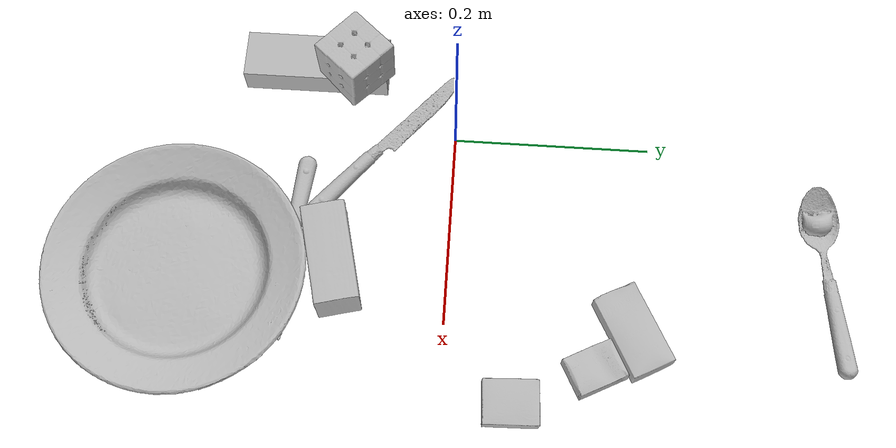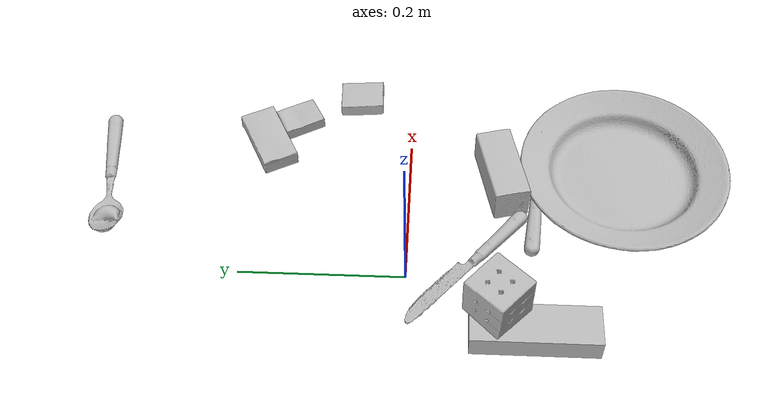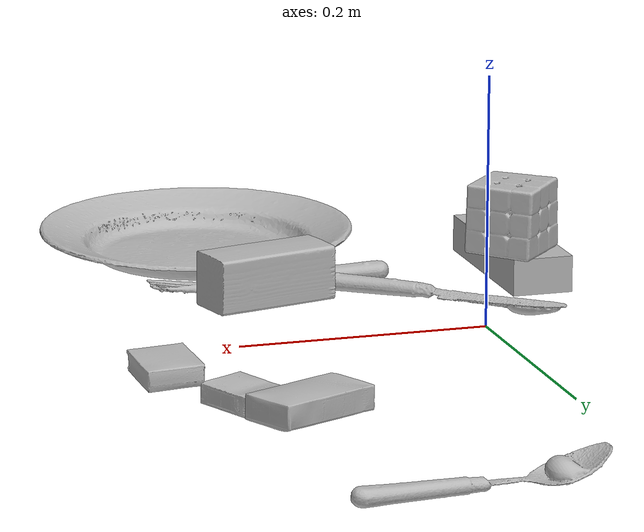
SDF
<sdf version="1.4">
  <world name="default">
    <light name="light1" type="point">
      <pose>0 0 1 0 0 0</pose>
      <diffuse>3 3 3 1</diffuse>
      <specular>3 3 3 1</specular>
    </light>
    <light name="light2" type="point">
      <pose>0 0.5 2 0 0 0</pose>
      <diffuse>1 1 1 1</diffuse>
      <specular>1 1 1 1</specular>
    </light>
    <light name="light3" type="point">
      <pose>0 0.5 2 0 0 0</pose>
      <diffuse>3 3 3 1</diffuse>
      <specular>3 3 3 1</specular>
    </light>
    <scene>
      <ambient>0.7 0.7 0.7</ambient>
    </scene>
    <model name="box11">
      <link name="link_box11">
        <collision name="default">
          <geometry>
            <mesh>
              <uri>model://pudding_box/collision_meshes/collision.obj</uri>
              <scale>0.5 0.5 0.5</scale>
            </mesh>
          </geometry>
          <surface>
            <friction>
              <ode>
                <mu>0.5</mu>
                <mu2>0.5</mu2>
              </ode>
            </friction>
          <contact>
        <ode>
            <max_vel>0</max_vel>
            <min_depth>0.0001</min_depth>
            <kp>1e8</kp>
        </ode>
    </contact></surface>
        </collision>
        <visual name="default">
          <geometry>
            <mesh>
              <uri>model://pudding_box/visual_meshes/visual.dae</uri>
              <scale>0.5 0.5 0.5</scale>
            </mesh>
          </geometry>
        </visual>
        <inertial>
          <mass>0.05641884729266167</mass>
          <pose>0.00024474109522998333 0.000403394311433658 -0.00025944141088984907 0.005213101771016666 -0.006603799659696515 0.020079828883224148</pose>
          <inertia>
            <ixx>1.5944652e-05</ixx>
            <iyy>1.0727675e-05</iyy>
            <izz>2.3546443e-05</izz>
            <ixy>0</ixy>
            <ixz>0</ixz>
            <iyz>0</iyz>
          </inertia>
        </inertial>
      </link>
      <pose>0.2764330506324768 0.06856215000152588 0.009862902574241161 0.022348406904335302 -0.011391813389975407 -3.0999515583148125</pose>
    </model>
    <model name="box12">
      <link name="link_box12">
        <collision name="default">
          <geometry>
            <mesh>
              <uri>model://wood_block/collision_meshes/collision.obj</uri>
              <scale>0.5 0.5 0.5</scale>
            </mesh>
          </geometry>
          <surface>
            <friction>
              <ode>
                <mu>0.5</mu>
                <mu2>0.5</mu2>
              </ode>
            </friction>
          <contact>
        <ode>
            <max_vel>0</max_vel>
            <min_depth>0.0001</min_depth>
            <kp>1e8</kp>
        </ode>
    </contact></surface>
        </collision>
        <visual name="default">
          <geometry>
            <mesh>
              <uri>model://wood_block/visual_meshes/visual.dae</uri>
              <scale>0.5 0.5 0.5</scale>
            </mesh>
          </geometry>
        </visual>
        <inertial>
          <mass>0.1445801854133606</mass>
          <pose>-2.906657982748584e-06 -0.000285404734313488 0.00013204291462898254 -0.052208162951624955 -0.0051926954609686745 -0.006861377578377277</pose>
          <inertia>
            <ixx>4.836754e-05</ixx>
            <iyy>0.0001527931</iyy>
            <izz>0.00015222155</izz>
            <ixy>0</ixy>
            <ixz>0</ixz>
            <iyz>0</iyz>
          </inertia>
        </inertial>
      </link>
      <pose>0.14547322690486908 -0.11474356055259705 0.022629259154200554 -0.005208447780292873 0.0057187036352896025 -2.9010398795763694</pose>
    </model>
    <model name="box13">
      <link name="link_box13">
        <collision name="default">
          <geometry>
            <mesh>
              <uri>model://sugar_box/collision_meshes/collision.obj</uri>
              <scale>0.5 0.5 0.5</scale>
            </mesh>
          </geometry>
          <surface>
            <friction>
              <ode>
                <mu>0.5</mu>
                <mu2>0.5</mu2>
              </ode>
            </friction>
          <contact>
        <ode>
            <max_vel>0</max_vel>
            <min_depth>0.0001</min_depth>
            <kp>1e8</kp>
        </ode>
    </contact></surface>
        </collision>
        <visual name="default">
          <geometry>
            <mesh>
              <uri>model://sugar_box/visual_meshes/visual.dae</uri>
              <scale>0.5 0.5 0.5</scale>
            </mesh>
          </geometry>
        </visual>
        <inertial>
          <mass>0.1187032163143158</mass>
          <pose>0.0005171863595023751 1.924554817378521e-05 -0.00018182402709499002 -0.0004046259512710581 0.0010506635216588768 0.002615378556274426</pose>
          <inertia>
            <ixx>2.4725794e-05</ixx>
            <iyy>7.991886e-05</iyy>
            <izz>9.567241e-05</izz>
            <ixy>0</ixy>
            <ixz>0</ixz>
            <iyz>0</iyz>
          </inertia>
        </inertial>
      </link>
      <pose>0.198885977268219 0.18416917324066162 0.011399324052035809 0.0007554246523900311 -0.0234293555425356 0.47135132542319375</pose>
    </model>
    <model name="box21">
      <link name="link_box21">
        <collision name="default">
          <geometry>
            <mesh>
              <uri>model://jenga/collision_meshes/collision.obj</uri>
              <scale>1.0 1.0 1.0</scale>
            </mesh>
          </geometry>
          <surface>
            <friction>
              <ode>
                <mu>0.5</mu>
                <mu2>0.5</mu2>
              </ode>
            </friction>
          <contact>
        <ode>
            <max_vel>0</max_vel>
            <min_depth>0.0001</min_depth>
            <kp>1e8</kp>
        </ode>
    </contact></surface>
        </collision>
        <visual name="default">
          <geometry>
            <mesh>
              <uri>model://jenga/visual_meshes/visual.dae</uri>
              <scale>1.0 1.0 1.0</scale>
            </mesh>
          </geometry>
        </visual>
        <inertial>
          <mass>0.20898528397083282</mass>
          <pose>-2.502855807051674e-07 -0.00010250010382151231 -4.092339804628864e-05 0.0 -7.342154049184251e-07 0.0</pose>
          <inertia>
            <ixx>5.7831294e-05</ixx>
            <iyy>0.0003918633</iyy>
            <izz>0.00041834736</izz>
            <ixy>0</ixy>
            <ixz>0</ixz>
            <iyz>0</iyz>
          </inertia>
        </inertial>
      </link>
      <pose>-0.07457876205444336 -0.1500241458415985 0.015000135637819767 -9.459562646749289e-06 -1.3434907061351965e-06 -1.5717644364826433</pose>
    </model>
    <model name="box22">
      <link name="link_box22">
        <collision name="default">
          <geometry>
            <mesh>
              <uri>model://rubiks_cube/collision_meshes/collision.obj</uri>
              <scale>1.0 1.0 1.0</scale>
            </mesh>
          </geometry>
          <surface>
            <friction>
              <ode>
                <mu>0.5</mu>
                <mu2>0.5</mu2>
              </ode>
            </friction>
          <contact>
        <ode>
            <max_vel>0</max_vel>
            <min_depth>0.0001</min_depth>
            <kp>1e8</kp>
        </ode>
    </contact></surface>
        </collision>
        <visual name="default">
          <geometry>
            <mesh>
              <uri>model://rubiks_cube/visual_meshes/visual.dae</uri>
              <scale>1.0 1.0 1.0</scale>
            </mesh>
          </geometry>
        </visual>
        <inertial>
          <mass>0.28698527812957764</mass>
          <pose>2.6721041649580002e-05 5.2569666877388954e-05 -7.2643156272533815e-06 -0.05467256881712973 -0.09813902151902686 -0.034455808755049874</pose>
          <inertia>
            <ixx>0.00015857864</ixx>
            <iyy>0.00015783912</iyy>
            <izz>0.00015989273</izz>
            <ixy>0</ixy>
            <ixz>0</ixz>
            <iyz>0</iyz>
          </inertia>
        </inertial>
      </link>
      <pose>-0.05841410160064697 -0.10597915947437286 0.05867599695920944 -2.554095229411939e-05 -7.142707965917997e-05 -2.313878126415871</pose>
    </model>
    <model name="box23">
      <link name="link_box23">
        <collision name="default">
          <geometry>
            <mesh>
              <uri>model://cracker_box/collision_meshes/collision.obj</uri>
              <scale>0.25 0.25 0.25</scale>
            </mesh>
          </geometry>
          <surface>
            <friction>
              <ode>
                <mu>0.5</mu>
                <mu2>0.5</mu2>
              </ode>
            </friction>
          <contact>
        <ode>
            <max_vel>0</max_vel>
            <min_depth>0.0001</min_depth>
            <kp>1e8</kp>
        </ode>
    </contact></surface>
        </collision>
        <visual name="default">
          <geometry>
            <mesh>
              <uri>model://cracker_box/visual_meshes/visual.dae</uri>
              <scale>0.25 0.25 0.25</scale>
            </mesh>
          </geometry>
        </visual>
        <inertial>
          <mass>0.04468085244297981</mass>
          <pose>0.00023660414444748312 6.358561222441494e-05 -0.0004257383698131889 -0.0003162076226327385 -0.011106488669128663 0.0025467943033026423</pose>
          <inertia>
            <ixx>7.10301e-06</ixx>
            <iyy>1.1728463e-05</iyy>
            <izz>1.6737597e-05</izz>
            <ixy>0</ixy>
            <ixz>0</ixz>
            <iyz>0</iyz>
          </inertia>
        </inertial>
      </link>
      <pose>0.2377578318119049 0.14797908067703247 0.0091205770149827 -0.011790380752834645 -0.007362091552027015 -1.095939346925331</pose>
    </model>
    <model name="plate1">
      <link name="link_plate1">
        <collision name="default">
          <geometry>
            <mesh>
              <uri>model://plate/collision_meshes/collision.obj</uri>
              <scale>1.0 1.0 1.0</scale>
            </mesh>
          </geometry>
          <surface>
            <friction>
              <ode>
                <mu>0.5</mu>
                <mu2>0.5</mu2>
              </ode>
            </friction>
          <contact>
        <ode>
            <max_vel>0</max_vel>
            <min_depth>0.0001</min_depth>
            <kp>1e8</kp>
        </ode>
    </contact></surface>
        </collision>
        <visual name="default">
          <geometry>
            <mesh>
              <uri>model://plate/visual_meshes/visual.dae</uri>
              <scale>1.0 1.0 1.0</scale>
            </mesh>
          </geometry>
        </visual>
        <inertial>
          <mass>0.20184239745140076</mass>
          <pose>-0.0006044648471288383 0.00027825962752103806 -0.0010561983799561858 0.0022188105697194356 -0.003225466439192432 0.4526020757977656</pose>
          <inertia>
            <ixx>0.00094422296</ixx>
            <iyy>0.00093519164</iyy>
            <izz>0.0018467589</izz>
            <ixy>0</ixy>
            <ixz>0</ixz>
            <iyz>0</iyz>
          </inertia>
        </inertial>
      </link>
      <pose>0.16193784773349762 -0.26876100897789 0.013725809752941132 1.1859244984173899e-05 0.0003765910578289073 -3.050491695540779</pose>
    </model>
    <model name="silverware1">
      <link name="link_silverware1">
        <collision name="default">
          <geometry>
            <mesh>
              <uri>model://fork/collision_meshes/collision.obj</uri>
              <scale>1.0 1.0 1.0</scale>
            </mesh>
          </geometry>
          <surface>
            <friction>
              <ode>
                <mu>0.5</mu>
                <mu2>0.5</mu2>
              </ode>
            </friction>
          <contact>
        <ode>
            <max_vel>0</max_vel>
            <min_depth>0.0001</min_depth>
            <kp>1e8</kp>
        </ode>
    </contact></surface>
        </collision>
        <visual name="default">
          <geometry>
            <mesh>
              <uri>model://fork/visual_meshes/visual.dae</uri>
              <scale>1.0 1.0 1.0</scale>
            </mesh>
          </geometry>
        </visual>
        <inertial>
          <mass>0.03151825815439224</mass>
          <pose>-0.029570046812295914 0.00046588233090005815 0.0003218861820641905 -0.013550990610422763 -0.010977834578584837 0.014453900606944525</pose>
          <inertia>
            <ixx>1.1048933e-06</ixx>
            <iyy>8.2285114e-05</iyy>
            <izz>8.2779305e-05</izz>
            <ixy>0</ixy>
            <ixz>0</ixz>
            <iyz>0</iyz>
          </inertia>
        </inertial>
      </link>
      <pose>0.12988507747650146 -0.159467414021492 0.005361598916351795 0.007281715613867393 0.04626214381962081 -0.10362141777341283</pose>
    </model>
    <model name="silverware2">
      <link name="link_silverware2">
        <collision name="default">
          <geometry>
            <mesh>
              <uri>model://spoon/collision_meshes/collision.obj</uri>
              <scale>1.0 1.0 1.0</scale>
            </mesh>
          </geometry>
          <surface>
            <friction>
              <ode>
                <mu>0.5</mu>
                <mu2>0.5</mu2>
              </ode>
            </friction>
          <contact>
        <ode>
            <max_vel>0</max_vel>
            <min_depth>0.0001</min_depth>
            <kp>1e8</kp>
        </ode>
    </contact></surface>
        </collision>
        <visual name="default">
          <geometry>
            <mesh>
              <uri>model://spoon/visual_meshes/visual.dae</uri>
              <scale>1.0 1.0 1.0</scale>
            </mesh>
          </geometry>
        </visual>
        <inertial>
          <mass>0.04083608463406563</mass>
          <pose>-0.005526324734091759 -0.001603417913429439 -0.0007271658978424966 0.03521537575369321 -0.03906582415196765 0.006150608891198343</pose>
          <inertia>
            <ixx>2.2713682e-06</ixx>
            <iyy>0.0001553799</iyy>
            <izz>0.0001565001</izz>
            <ixy>0</ixy>
            <ixz>0</ixz>
            <iyz>0</iyz>
          </inertia>
        </inertial>
      </link>
      <pose>0.13467589020729065 0.377465158700943 0.008385265246033669 0.006728893535052385 0.026892962185722236 -3.0184955930152544</pose>
    </model>
    <model name="silverware3">
      <link name="link_silverware3">
        <collision name="default">
          <geometry>
            <mesh>
              <uri>model://knife/collision_meshes/collision.obj</uri>
              <scale>1.0 1.0 1.0</scale>
            </mesh>
          </geometry>
          <surface>
            <friction>
              <ode>
                <mu>0.5</mu>
                <mu2>0.5</mu2>
              </ode>
            </friction>
          <contact>
        <ode>
            <max_vel>0</max_vel>
            <min_depth>0.0001</min_depth>
            <kp>1e8</kp>
        </ode>
    </contact></surface>
        </collision>
        <visual name="default">
          <geometry>
            <mesh>
              <uri>model://knife/visual_meshes/visual.dae</uri>
              <scale>1.0 1.0 1.0</scale>
            </mesh>
          </geometry>
        </visual>
        <inertial>
          <mass>0.024411516264081</mass>
          <pose>-0.023785248398780823 0.0015275123296305537 5.062021955382079e-05 0.07305335097392199 0.01724841144103926 -0.007409823891069756</pose>
          <inertia>
            <ixx>6.9289786e-07</ixx>
            <iyy>9.37851e-05</iyy>
            <izz>9.400826e-05</izz>
            <ixy>0</ixy>
            <ixz>0</ixz>
            <iyz>0</iyz>
          </inertia>
        </inertial>
      </link>
      <pose>0.014853332191705704 -0.0716795101761818 0.007936859503388405 0.03276085329867447 -0.01423232950514954 2.42073200447449</pose>
    </model>
  <physics type="ode">
      <max_contacts>50</max_contacts>
      <ode>
        <solver>
          <type>quick</type>
          <iters>75</iters>
        </solver>
        <constraints>
          <contact_max_correcting_vel>0</contact_max_correcting_vel>
          <contact_surface_layer>0</contact_surface_layer>
        </constraints>
      </ode>
    </physics></world>
</sdf>
